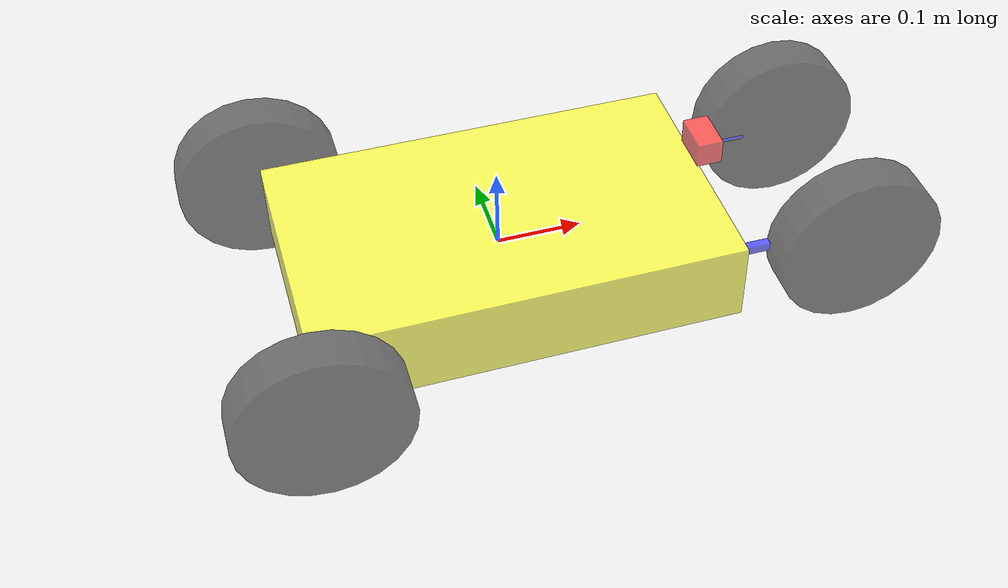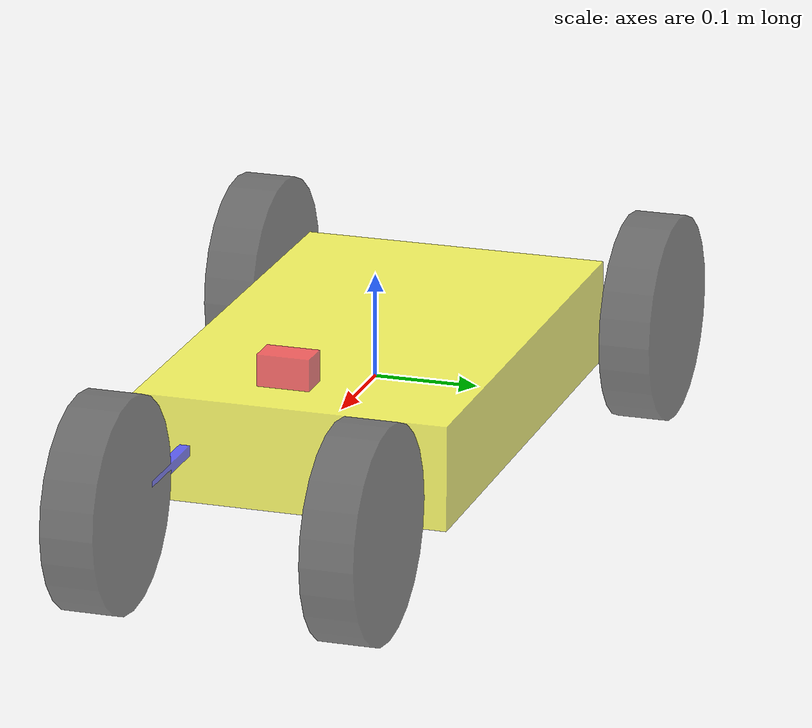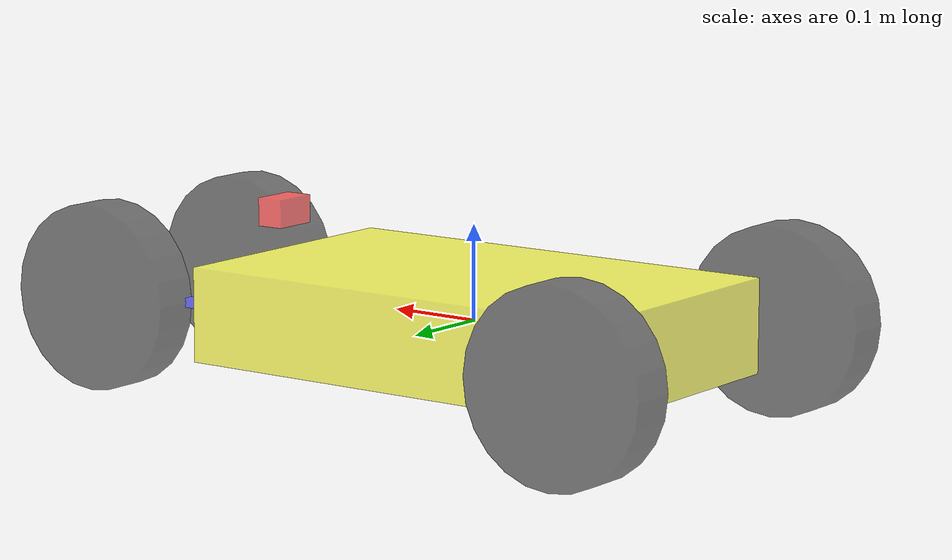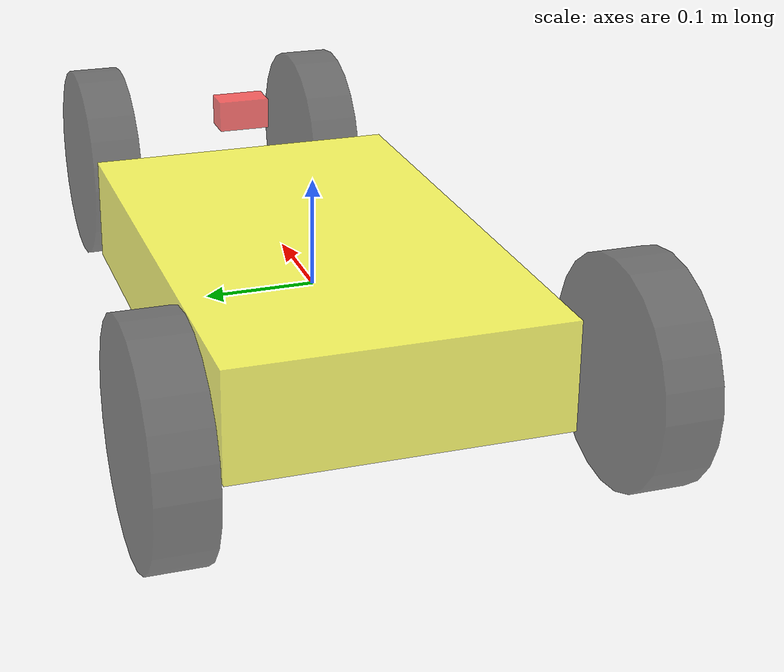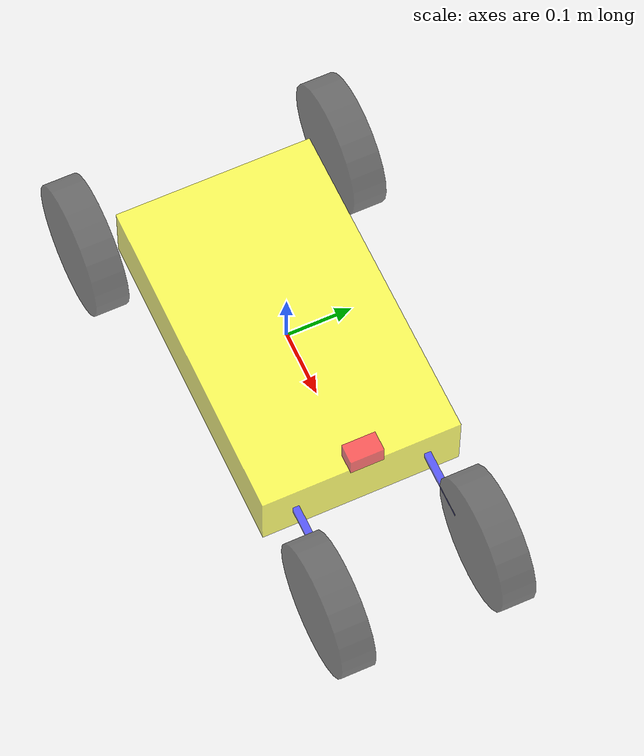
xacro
<?xml version="1.0"?>
<robot xmlns:xacro="http://ros.org/wiki/xacro" name="auto_car">

    <xacro:include filename="./wheel.xacro"          />
    <xacro:include filename="./sensors.xacro"        />
    <xacro:include filename="./ros_interface.xacro"  />
    <xacro:include filename="./inertia.xacro"        />

    <xacro:property name="x_position" value="0.25"/>
    <xacro:property name="y_position" value="0.2"/>

    <link name="base_link">
        <visual>
            <origin xyz="0 0 0" rpy="0 0 0" />
            <geometry>
                <box size="0.5 0.3 0.1" />
            </geometry>
            <material name="yellow">
                <color rgba="1 1 0.0 0.6"/>
            </material>
        </visual>
        <collision>
            <origin xyz="0 0 0" rpy="0 0 0" />
            <geometry>
                <box size="0.5 0.3 0.1" />
            </geometry>
        </collision>
        <xacro:solid_cuboid_inertia m="1" h="0.5" d="0.3" w="0.1"/>
    </link>

    <!-- Define steering joint -->
    <joint name="steering_joint" type="continuous">
        <origin xyz="0.15 0 0" rpy="0 0 0" />
        <parent link="base_link" />
        <child link="steering_link" />
        <axis xyz="0 0 1" />
    </joint>

        <!-- Define steering link -->
    <link name="steering_link">
        <visual>
            <origin xyz="0 0 0" rpy="0 0 0" />
            <geometry>
                <box size="0.01 0.2 0.01" />
            </geometry>
            <material name="blue">
                <color rgba="0 0 1 0.6"/>
            </material>
        </visual>
        <collision>
            <origin xyz="0 0 0" rpy="0 0 0" />
            <geometry>
                <box size="0.01 0.2 0.01" />
            </geometry>
        </collision>
    </link>

    <joint name="steering_l_joint" type="revolute">
        <origin xyz="0 +0.1 0" rpy="0 0 0" />
        <parent link="steering_link" />
        <child link="steering_l_link" />
        <axis xyz="0 0 1" />
        <limit lower="-0.5" upper="0.5" effort="10" velocity="1" />
    </joint>

    <link name="steering_l_link">
        <visual>
            <origin xyz="0.1 0 0" rpy="0 0 0" />
            <geometry>
                <box size="0.2 0.01 0.01" />
            </geometry>
            <material name="blue">
                <color rgba="0 0 1 0.6"/>
            </material>
        </visual>
        <collision>
            <origin xyz="0.1 0 0" rpy="0 0 0" />
            <geometry>
                <box size="0.2 0.01 0.01" />
            </geometry>
        </collision>
    </link>

    <joint name="steering_r_joint" type="revolute">
        <origin xyz="0 -0.1 0" rpy="0 0 0" />
        <parent link="steering_link" />
        <child link="steering_r_link" />
        <axis xyz="0 0 1" />
        <limit lower="-0.5" upper="0.5" effort="10" velocity="1" />
    </joint>

    <link name="steering_r_link">
        <visual>
            <origin xyz="0.1 0 0" rpy="0 0 0" />
            <geometry>
                <box size="0.2 0.01 0.01" />
            </geometry>
            <material name="blue">
                <color rgba="0 0 1 0.6"/>
            </material>
        </visual>
        <collision>
            <origin xyz="0.1 0 0" rpy="0 0 0" />
            <geometry>
                <box size="0.2 0.01 0.01" />
            </geometry>
        </collision>
    </link>

    <!-- Define front wheel joints connected to steering link -->
    <xacro:steering_wheel name="wheel_fr" x="0.25" y="-0.02" parent="steering_r"/>
    <xacro:steering_wheel name="wheel_fl" x="0.25" y="+0.02" parent="steering_l"/>

    <xacro:wheel name="wheel_br" x="-${x_position}"  y="-${y_position}"  z="0"  parent="base" />
    <xacro:wheel name="wheel_bl" x="-${x_position}"  y="+${y_position}"  z="0"  parent="base" />

</robot>

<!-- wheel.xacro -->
<robot xmlns:xacro="http://ros.org/wiki/xacro">

    <xacro:macro name="wheel" params="name x y z parent">
        <link name="${name}_link">
            <visual>
                <origin xyz="0 0 0" rpy="0 0 0" />
                <geometry>
                    <cylinder radius="0.1" length="0.05" />
                </geometry>
                <material name="grey">
                    <color rgba="0.1 0.1 0.1 0.6"/>
                </material>
            </visual>
            <collision>
                <origin xyz="0 0 0" rpy="0 0 0" />
                <geometry>
                    <cylinder radius="0.1" length="0.05" />
                </geometry>
            </collision>
        </link>

        <joint name="${name}_joint" type="continuous">
            <origin xyz="${x} ${y} ${z}" rpy="-1.5707 0 0" />
            <parent link="${parent}_link" />
            <child link="${name}_link" />
            <axis xyz="0 0 1" />
        </joint>
    </xacro:macro>

    <xacro:macro name="steering_wheel" params="name x y parent">
        <joint name="${name}_joint" type="continuous">
            <origin xyz="${x} ${y} 0" rpy="-1.5707 0 0" />
            <parent link="${parent}_link" />
            <child link="${name}_link" />
            <axis xyz="0 0 1" />
        </joint>

        <link name="${name}_link">
            <visual>
                <origin xyz="0 0 0" rpy="0 0 0" />
                <geometry>
                    <cylinder radius="0.1" length="0.05" />
                </geometry>
                <material name="grey">
                    <color rgba="0.1 0.1 0.1 0.6"/>
                </material>
            </visual>
            <collision>
                <origin xyz="0 0 0" rpy="0 0 0" />
                <geometry>
                    <cylinder radius="0.1" length="0.05" />
                </geometry>
            </collision>
        </link>
    </xacro:macro>
</robot>

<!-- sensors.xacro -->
<robot xmlns:xacro="http://ros.org/wiki/xacro">

    <!-- Define properties for reuse -->
    <xacro:property name="imu_update_rate"            value="100"/>
    <xacro:property name="lidar_update_rate"          value="100"/>
    <xacro:property name="camera_update_rate"         value="30"/>
    <xacro:property name="depth_camera_update_rate"   value="30"/>
    <xacro:property name="camera_x_position"          value="0.25"/>
    <xacro:property name="camera_z_position"          value="0.07"/>

    <!-- *********************** IMU SENSOR SETUP **************************  -->
    <link name="imu_link">
        <gazebo>
            <gravity>true</gravity>
            <sensor name="bmb_imu" type="imu">
                <always_on>true</always_on>
                <update_rate>${imu_update_rate}</update_rate>
                <visualize>true</visualize>
                <imu>
                    <orientation>
                        <x>
                            <noise type="gaussian">
                                <mean>0.0</mean>
                                <stddev>2e-3</stddev>
                            </noise>
                        </x>
                        <y>
                            <noise type="gaussian">
                                <mean>0.0</mean>
                                <stddev>2e-3</stddev>
                            </noise>
                        </y>
                        <z>
                            <noise type="gaussian">
                                <mean>0.0</mean>
                                <stddev>2e-3</stddev>
                            </noise>
                        </z>
                    </orientation>
                    <angular_velocity>
                        <x>
                            <noise type="gaussian">
                                <mean>0.0</mean>
                                <stddev>2e-4</stddev>
                            </noise>
                        </x>
                        <y>
                            <noise type="gaussian">
                                <mean>0.0</mean>
                                <stddev>2e-4</stddev>
                            </noise>
                        </y>
                        <z>
                            <noise type="gaussian">
                                <mean>0.0</mean>
                                <stddev>2e-4</stddev>
                            </noise>
                        </z>
                    </angular_velocity>
                    <linear_acceleration>
                        <x>
                            <noise type="gaussian">
                                <mean>0.0</mean>
                                <stddev>1.7e-2</stddev>
                            </noise>
                        </x>
                        <y>
                            <noise type="gaussian">
                                <mean>0.0</mean>
                                <stddev>1.7e-2</stddev>
                            </noise>
                        </y>
                        <z>
                            <noise type="gaussian">
                                <mean>0.0</mean>
                                <stddev>1.7e-2</stddev>
                            </noise>
                        </z>
                    </linear_acceleration>
                </imu>
                <plugin name="basic_mobile_bot_imu" filename="libgazebo_ros_imu_sensor.so">
                    <initial_orientation_as_reference>false</initial_orientation_as_reference>
                    <frame_name>imu_link</frame_name>
                    <ros>
                        <namespace>/imu</namespace>
                        <remapping>~/out:=data</remapping>
                    </ros>
                </plugin>
            </sensor>
        </gazebo>
    </link>

    <joint name="imu_joint" type="fixed">
        <origin        xyz="0 0 0"        rpy="0 0 0" />
        <parent     link="base_link" />
        <child      link="imu_link" />
    </joint>

    <!-- *********************** LIDAR SENSOR SETUP **************************  -->
    <link name="lidar_link">
        <gazebo>
            <gravity>true</gravity>
            <sensor name="bmb_lidar" type="ray">
                <always_on>true</always_on>
                <update_rate>${lidar_update_rate}</update_rate>
                <visualize>true</visualize>
                <ray>
                    <scan>
                        <horizontal>
                            <samples>640</samples>
                            <resolution>1</resolution>
                            <min_angle>-2.0</min_angle>
                            <max_angle>2.0</max_angle>
                        </horizontal>
                        <vertical>
                            <samples>1</samples>
                            <resolution>1</resolution>
                            <min_angle>0.0</min_angle>
                            <max_angle>0.0</max_angle>
                        </vertical>
                    </scan>
                    <range>
                        <min>0.12</min>
                        <max>10.0</max>
                        <resolution>0.01</resolution>
                    </range>
                    <noise>
                        <type>gaussian</type>
                        <mean>0.0</mean>
                        <stddev>0.01</stddev>
                    </noise>
                </ray>
                <plugin name="basic_mobile_bot_lidar" filename="libgazebo_ros_laser.so">
                    <frame_name>lidar_link</frame_name>
                    <topic_name>scan</topic_name>
                    <gaussian_noise>0.01</gaussian_noise>
                    <ros>
                        <namespace>/lidar</namespace>
                    </ros>
                </plugin>
            </sensor>
        </gazebo>
    </link>

    <joint name="lidar_joint" type="fixed">
        <parent link="base_link"/>
        <child link="lidar_link"/>
        <origin        xyz="0 0 0"        rpy="0 0 0" />
    </joint>

    <!-- *********************** CAMERA ****************************** -->
    <link name="camera_link">
        <visual>
            <origin xyz="-0.02 0 0" rpy="0 0 0" />
            <geometry>
                <box size="0.03 0.05 0.03" />
            </geometry>
            <material name="red">
                <color rgba="1 0.0 0.0 0.6"/>
            </material>
        </visual>
        <gazebo>
            <pose>0.34 0 0.15 0 0 0</pose>

            <sensor name="rgbd_camera" type="camera">
                <always_on>true</always_on>
                <visualize>true</visualize>
                <update_rate>${camera_update_rate}</update_rate>
                <camera name="rgb_camera">
                    <horizontal_fov>1.02974</horizontal_fov>
                    <image>
                        <width>640</width>
                        <height>480</height>
                        <format>R8G8B8</format>
                    </image>
                    <clip>
                        <near>0.02</near>
                        <far>100.0</far>
                    </clip>
                </camera>
                <plugin name="rgb_camera_plugin" filename="libgazebo_ros_camera.so">
                    <camera_name>rgb_camera</camera_name>
                    <frame_name>camera_rgb_frame</frame_name>
                </plugin>
            </sensor>
        </gazebo>
    </link>

    <joint name="cam_joint" type="fixed">
        <parent link="base_link"/>
        <child link="camera_link"/>
        <origin        xyz="${camera_x_position} 0 ${camera_z_position}"        rpy="0 1.5707 0" />
    </joint>

    <!-- *********************** DEPTH CAMERA ****************************** -->
    <link name="camera_depth_link">
        <gazebo>
            <pose>0.34 0 0.55 0 0 0</pose>
            <visual name="camera_depth_visual">
                <pose>0 0 0 0 0 0</pose>
                <geometry>
                    <box>
                        <size>0.045 0.08 0.022</size>
                    </box>
                </geometry>
                <material>
                    <ambient>0 0 0 1.0</ambient>
                    <diffuse>0 0 0 1.0</diffuse>
                    <specular>0.0 0.0 0.0 1.0</specular>
                    <emissive>0.0 0.0 0.0 1.0</emissive>
                </material>
            </visual>

            <sensor name="depth_camera" type="depth">
                <visualize>true</visualize>
                <always_on>true</always_on>
                <update_rate>${depth_camera_update_rate}</update_rate>
                <camera name="depth_camera">
                    <horizontal_fov>1.02974</horizontal_fov>
                    <image>
                        <width>640</width>
                        <height>480</height>
                        <format>B8G8R8</format>
                    </image>
                    <clip>
                        <near>0.02</near>
                        <far>20.0</far>
                    </clip>
                </camera>
                <plugin name="camera_controller" filename="libgazebo_ros_camera.so">
                    <frame_name>camera_depth_link</frame_name>
                    <min_depth>0.02</min_depth>
                    <max_depth>20.0</max_depth>
                    <clip_near>0.02</clip_near>
                    <clip_far>20.0</clip_far>
                </plugin>
            </sensor>
        </gazebo>
    </link>

    <joint name="depth_cam_joint" type="fixed">
        <parent link="base_link"/>
        <child link="camera_depth_link"/>
        <origin        xyz="${camera_x_position} 0 ${camera_z_position}"        rpy="0 1.5707 0" />
    </joint>

</robot>

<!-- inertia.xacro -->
<robot xmlns:xacro="http://wiki.ros.org/xacro">
    <!-- source en.wikipedia.org/wiki/List_of_moments_of_inertia-->

    <!-- TODO Solid sphere of radius r and mass m-->
    <xacro:macro name="solid_sphere_inertia" params="m r">
        <inertial>
            <origin xyz="0.0 0.0 0.0" rpy="0.0 0.0 0.0"/>
            <mass value="${m}"/>

            <inertia
                ixx="${(2*r*r*m)/5}"
                ixy="0"
                ixz="0"
                iyy="${(2*r*r*m)/5}"
                iyz="0"
                izz="${(2*r*r*m)/5}"
            />
        </inertial>
    </xacro:macro>

    <!-- TODO Hollow sphere of radius r and mass m-->
    <xacro:macro name="solid_sphere_inertia" params="m r">
        <inertial>
            <origin xyz="0.0 0.0 0.0" rpy="0.0 0.0 0.0"/>
            <mass value="${m}"/>

            <inertia
                ixx="${(2*r*r*m)/3}"
                ixy="0"
                ixz="0"
                iyy="${(2*r*r*m)/3}"
                iyz="0"
                izz="${(2*r*r*m)/3}"
            />
        </inertial>
    </xacro:macro>

    <!-- TODO Solid ellipsoid of semi-axes a, b, c and mass m-->
    <xacro:macro name="ellipsoid_semi_axes_inertia" params="a b c m r">
        <inertial>
            <origin xyz="0.0 0.0 0.0" rpy="0.0 0.0 0.0"/>
            <mass value="${m}"/>

            <inertia
                ixx="${(m*(b*b+c*c))/5}"
                ixy="0"
                ixz="0"
                iyy="${(m*(a*a+c*c))/5}"
                iyz="0"
                izz="${(m*(a*a+b*b))/5}"
            />
        </inertial>
    </xacro:macro>

    <!-- TODO Right circular cone with radius r, height h and mass m, about the apex -->
    <xacro:macro name="right_circular_cone_inertia" params="m r h">
        <inertial>
            <origin xyz="0.0 0.0 0.0" rpy="0.0 0.0 0.0"/>
            <mass value="${m}"/>

            <inertia
                ixx="${((3*m*(h*h))/5)+((3*m*(r*r))/20)}"
                ixy="0"
                ixz="0"
                iyy="${((3*m*(h*h))/5)+((3*m*(r*r))/20)}"
                iyz="0"
                izz="${(3*m*(r*r))/10}"
            />
        </inertial>
    </xacro:macro>

    <!-- TODO Solid cuboid of width w, height h, depth d, and mass m -->
    <!-- yes, axis in solid_cuboid_inertia are changed, w relates to X axis, d to Z axis, and h to Y
    axis -->
    <!-- Keep this comment -->
    <xacro:macro name="solid_cuboid_inertia" params="m h d w">
        <inertial>
            <origin xyz="0.0 0.0 0.0" rpy="0.0 0.0 0.0"/>
            <mass value="${m}"/>

            <inertia
                ixx="${(m*(h*h+d*d))/12}"
                ixy="0"
                ixz="0"
                iyy="${(m*(w*w+d*d))/12}"
                iyz="0"
                izz="${(m*(w*w+h*h))/12}"
            />
        </inertial>
    </xacro:macro>

    <!-- TODO Solid cylinder of radius r, height h and mass m -->
    <xacro:macro name="solid_cylinder_inertia" params="m r h">
        <inertial>
            <origin xyz="0.0 0.0 0.0" rpy="0.0 0.0 0.0"/>
            <mass value="${m}"/>

            <inertia
                ixx="${m*(3*r*r+h*h)/12}"
                ixy="0"
                ixz="0"
                iyy="${m*(3*r*r+h*h)/12}"
                iyz="0"
                izz="${m*r*r/2}"
            />
        </inertial>
    </xacro:macro>

    <!-- TODO Thick-walled cylindrical tube with open ends, of inner radius r1, outer radius r2,
    length h and mass m -->
    <xacro:macro name="thick_walled_cylinder_inertia" params="m r1 r2 h">
        <inertial>
            <origin xyz="0.0 0.0 0.0" rpy="0.0 0.0 0.0"/>
            <mass value="${m}"/>

            <inertia
                ixx="${m*((3*(r1*r1+r2*r2))+(h*h))/12}"
                ixy="0"
                ixz="0"
                iyy="${m*((3*(r1*r1+r2*r2))+(h*h))/12}"
                iyz="0"
                izz="${m*(r1*r1+r2*r2)/2}"
            />
        </inertial>
    </xacro:macro>

</robot>
